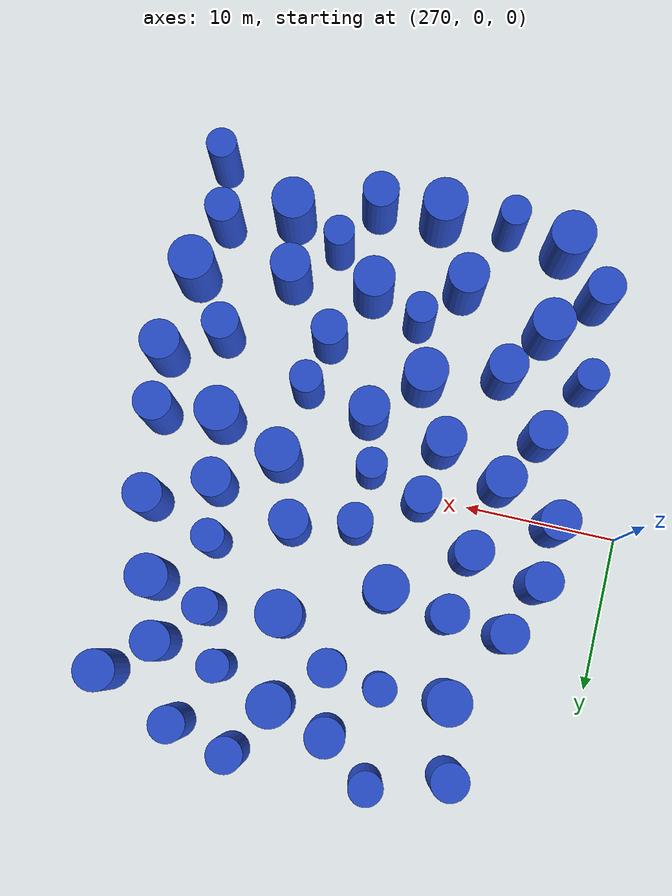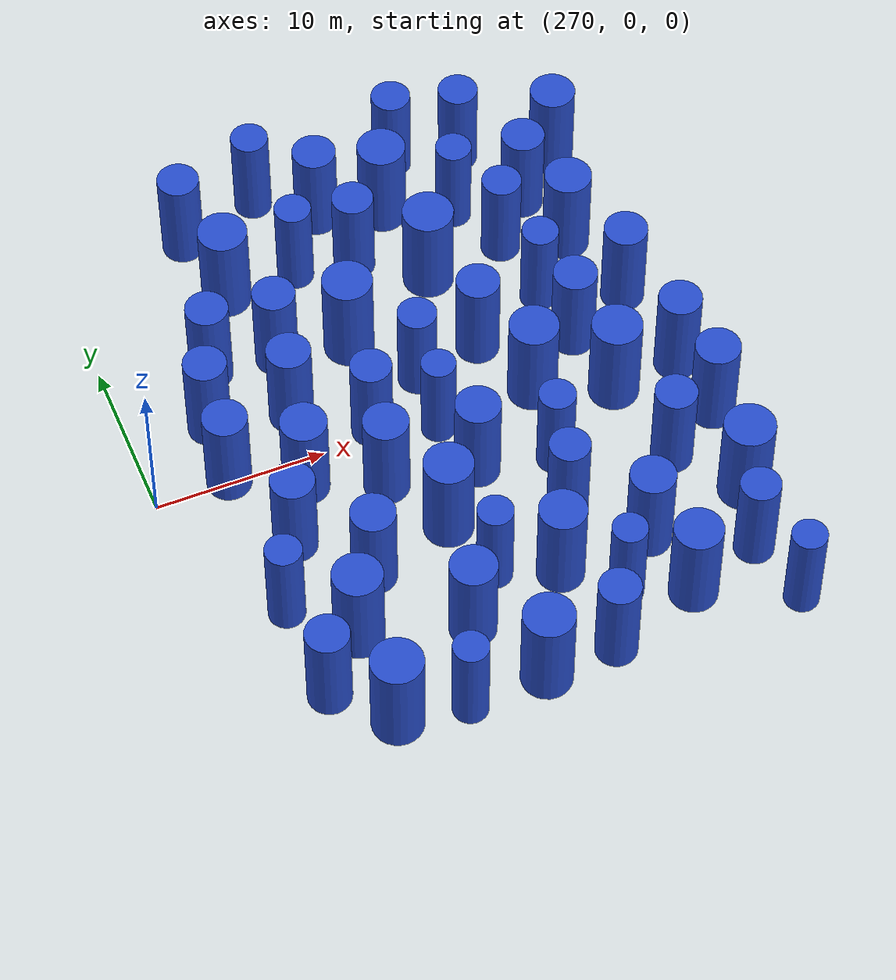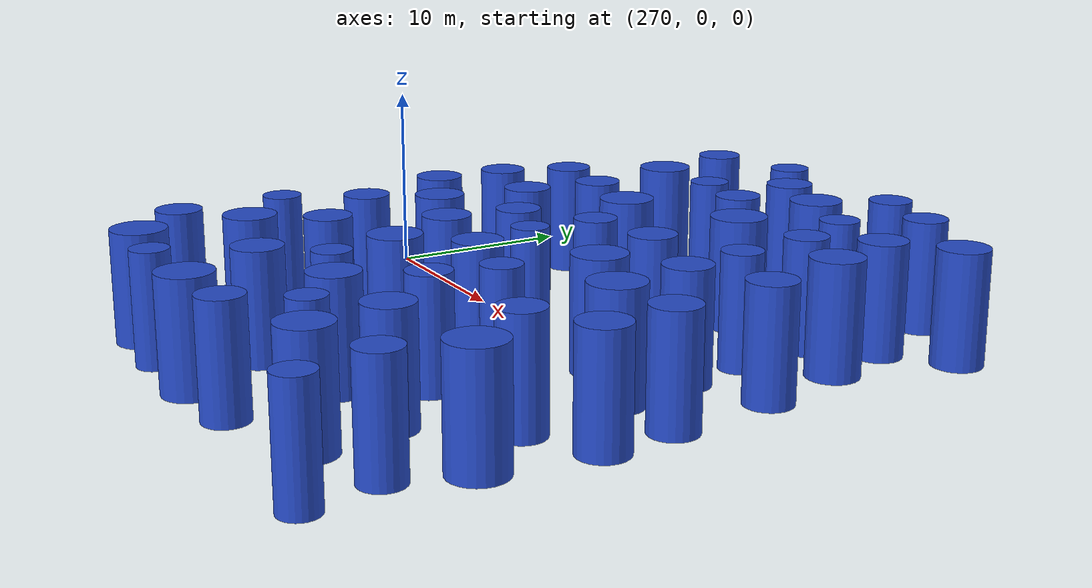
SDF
<sdf version="1.7">
 <world name="default">
  <model name="2">
   <static>1</static>
   <link name="link">
    <inertial>
     <mass>2</mass>
     <inertia><ixx>6.83423</ixx><ixy>0</ixy><ixz>0</ixz><iyy>6.83423</iyy><iyz>0</iyz><izz>1.66847</izz></inertia>
    </inertial>
    <collision name="collision">
     <geometry><cylinder><length>6</length><radius>1.29169</radius></cylinder></geometry>
     <surface><contact><collide_without_contact>1</collide_without_contact></contact></surface>
    </collision>
    <visual name="visual">
     <geometry><cylinder><length>6</length><radius>1.29169</radius></cylinder></geometry>
     <material>
      <script><uri>file://media/materials/scripts/gazebo.material</uri><name>Gazebo/Blue</name></script>
     </material>
    </visual>
    <gravity>0</gravity>
   </link>
   <pose>274.38 0.175366 3 0 -0 0</pose>
  </model>
  <model name="15">
   <static>1</static>
   <link name="link">
    <inertial>
     <mass>2</mass>
     <inertia><ixx>6.80663</ixx><ixy>0</ixy><ixz>0</ixz><iyy>6.80663</iyy><iyz>0</iyz><izz>1.61326</izz></inertia>
    </inertial>
    <collision name="collision">
     <geometry><cylinder><length>6</length><radius>1.27014</radius></cylinder></geometry>
     <surface><contact><collide_without_contact>1</collide_without_contact></contact></surface>
    </collision>
    <visual name="visual">
     <geometry><cylinder><length>6</length><radius>1.27014</radius></cylinder></geometry>
     <material>
      <script><uri>file://media/materials/scripts/gazebo.material</uri><name>Gazebo/Blue</name></script>
     </material>
    </visual>
    <gravity>0</gravity>
   </link>
   <pose>290.973 3.8653 3 0 -0 0</pose>
  </model>
  <model name="19">
   <static>1</static>
   <link name="link">
    <inertial>
     <mass>2</mass>
     <inertia><ixx>7.03448</ixx><ixy>0</ixy><ixz>0</ixz><iyy>7.03448</iyy><iyz>0</iyz><izz>2.06895</izz></inertia>
    </inertial>
    <collision name="collision">
     <geometry><cylinder><length>6</length><radius>1.43839</radius></cylinder></geometry>
     <surface><contact><collide_without_contact>1</collide_without_contact></contact></surface>
    </collision>
    <visual name="visual">
     <geometry><cylinder><length>6</length><radius>1.43839</radius></cylinder></geometry>
     <material>
      <script><uri>file://media/materials/scripts/gazebo.material</uri><name>Gazebo/Blue</name></script>
     </material>
    </visual>
    <gravity>0</gravity>
   </link>
   <pose>278.796 12.7132 3 0 -0 0</pose>
  </model>
  <model name="21">
   <static>1</static>
   <link name="link">
    <inertial>
     <mass>2</mass>
     <inertia><ixx>6.64731</ixx><ixy>0</ixy><ixz>0</ixz><iyy>6.64731</iyy><iyz>0</iyz><izz>1.29463</izz></inertia>
    </inertial>
    <collision name="collision">
     <geometry><cylinder><length>6</length><radius>1.13782</radius></cylinder></geometry>
     <surface><contact><collide_without_contact>1</collide_without_contact></contact></surface>
    </collision>
    <visual name="visual">
     <geometry><cylinder><length>6</length><radius>1.13782</radius></cylinder></geometry>
     <material>
      <script><uri>file://media/materials/scripts/gazebo.material</uri><name>Gazebo/Blue</name></script>
     </material>
    </visual>
    <gravity>0</gravity>
   </link>
   <pose>286.906 3.00644 3 0 -0 0</pose>
  </model>
  <model name="22">
   <static>1</static>
   <link name="link">
    <inertial>
     <mass>2</mass>
     <inertia><ixx>6.88461</ixx><ixy>0</ixy><ixz>0</ixz><iyy>6.88461</iyy><iyz>0</iyz><izz>1.76923</izz></inertia>
    </inertial>
    <collision name="collision">
     <geometry><cylinder><length>6</length><radius>1.33012</radius></cylinder></geometry>
     <surface><contact><collide_without_contact>1</collide_without_contact></contact></surface>
    </collision>
    <visual name="visual">
     <geometry><cylinder><length>6</length><radius>1.33012</radius></cylinder></geometry>
     <material>
      <script><uri>file://media/materials/scripts/gazebo.material</uri><name>Gazebo/Blue</name></script>
     </material>
    </visual>
    <gravity>0</gravity>
   </link>
   <pose>300.557 15.5685 3 0 -0 0</pose>
  </model>
  <model name="35">
   <static>1</static>
   <link name="link">
    <inertial>
     <mass>2</mass>
     <inertia><ixx>7.00701</ixx><ixy>0</ixy><ixz>0</ixz><iyy>7.00701</iyy><iyz>0</iyz><izz>2.01402</izz></inertia>
    </inertial>
    <collision name="collision">
     <geometry><cylinder><length>6</length><radius>1.41916</radius></cylinder></geometry>
     <surface><contact><collide_without_contact>1</collide_without_contact></contact></surface>
    </collision>
    <visual name="visual">
     <geometry><cylinder><length>6</length><radius>1.41916</radius></cylinder></geometry>
     <material>
      <script><uri>file://media/materials/scripts/gazebo.material</uri><name>Gazebo/Blue</name></script>
     </material>
    </visual>
    <gravity>0</gravity>
   </link>
   <pose>277.357 -12.2847 3 0 -0 0</pose>
  </model>
  <model name="60">
   <static>1</static>
   <link name="link">
    <inertial>
     <mass>2</mass>
     <inertia><ixx>6.81815</ixx><ixy>0</ixy><ixz>0</ixz><iyy>6.81815</iyy><iyz>0</iyz><izz>1.6363</izz></inertia>
    </inertial>
    <collision name="collision">
     <geometry><cylinder><length>6</length><radius>1.27918</radius></cylinder></geometry>
     <surface><contact><collide_without_contact>1</collide_without_contact></contact></surface>
    </collision>
    <visual name="visual">
     <geometry><cylinder><length>6</length><radius>1.27918</radius></cylinder></geometry>
     <material>
      <script><uri>file://media/materials/scripts/gazebo.material</uri><name>Gazebo/Blue</name></script>
     </material>
    </visual>
    <gravity>0</gravity>
   </link>
   <pose>285.808 16.4159 3 0 -0 0</pose>
  </model>
  <model name="90">
   <static>1</static>
   <link name="link">
    <inertial>
     <mass>2</mass>
     <inertia><ixx>6.95071</ixx><ixy>0</ixy><ixz>0</ixz><iyy>6.95071</iyy><iyz>0</iyz><izz>1.90143</izz></inertia>
    </inertial>
    <collision name="collision">
     <geometry><cylinder><length>6</length><radius>1.37892</radius></cylinder></geometry>
     <surface><contact><collide_without_contact>1</collide_without_contact></contact></surface>
    </collision>
    <visual name="visual">
     <geometry><cylinder><length>6</length><radius>1.37892</radius></cylinder></geometry>
     <material>
      <script><uri>file://media/materials/scripts/gazebo.material</uri><name>Gazebo/Blue</name></script>
     </material>
    </visual>
    <gravity>0</gravity>
   </link>
   <pose>298.807 9.19752 3 0 -0 0</pose>
  </model>
  <model name="95">
   <static>1</static>
   <link name="link">
    <inertial>
     <mass>2</mass>
     <inertia><ixx>7.02237</ixx><ixy>0</ixy><ixz>0</ixz><iyy>7.02237</iyy><iyz>0</iyz><izz>2.04473</izz></inertia>
    </inertial>
    <collision name="collision">
     <geometry><cylinder><length>6</length><radius>1.42994</radius></cylinder></geometry>
     <surface><contact><collide_without_contact>1</collide_without_contact></contact></surface>
    </collision>
    <visual name="visual">
     <geometry><cylinder><length>6</length><radius>1.42994</radius></cylinder></geometry>
     <material>
      <script><uri>file://media/materials/scripts/gazebo.material</uri><name>Gazebo/Blue</name></script>
     </material>
    </visual>
    <gravity>0</gravity>
   </link>
   <pose>284.617 -7.32385 3 0 -0 0</pose>
  </model>
  <model name="110">
   <static>1</static>
   <link name="link">
    <inertial>
     <mass>2</mass>
     <inertia><ixx>6.7483</ixx><ixy>0</ixy><ixz>0</ixz><iyy>6.7483</iyy><iyz>0</iyz><izz>1.49661</izz></inertia>
    </inertial>
    <collision name="collision">
     <geometry><cylinder><length>6</length><radius>1.22336</radius></cylinder></geometry>
     <surface><contact><collide_without_contact>1</collide_without_contact></contact></surface>
    </collision>
    <visual name="visual">
     <geometry><cylinder><length>6</length><radius>1.22336</radius></cylinder></geometry>
     <material>
      <script><uri>file://media/materials/scripts/gazebo.material</uri><name>Gazebo/Blue</name></script>
     </material>
    </visual>
    <gravity>0</gravity>
   </link>
   <pose>277.759 17.3587 3 0 -0 0</pose>
  </model>
  <model name="114">
   <static>1</static>
   <link name="link">
    <inertial>
     <mass>2</mass>
     <inertia><ixx>6.89362</ixx><ixy>0</ixy><ixz>0</ixz><iyy>6.89362</iyy><iyz>0</iyz><izz>1.78725</izz></inertia>
    </inertial>
    <collision name="collision">
     <geometry><cylinder><length>6</length><radius>1.33688</radius></cylinder></geometry>
     <surface><contact><collide_without_contact>1</collide_without_contact></contact></surface>
    </collision>
    <visual name="visual">
     <geometry><cylinder><length>6</length><radius>1.33688</radius></cylinder></geometry>
     <material>
      <script><uri>file://media/materials/scripts/gazebo.material</uri><name>Gazebo/Blue</name></script>
     </material>
    </visual>
    <gravity>0</gravity>
   </link>
   <pose>283.307 -14.065 3 0 -0 0</pose>
  </model>
  <model name="116">
   <static>1</static>
   <link name="link">
    <inertial>
     <mass>2</mass>
     <inertia><ixx>6.5672</ixx><ixy>0</ixy><ixz>0</ixz><iyy>6.5672</iyy><iyz>0</iyz><izz>1.13439</izz></inertia>
    </inertial>
    <collision name="collision">
     <geometry><cylinder><length>6</length><radius>1.06508</radius></cylinder></geometry>
     <surface><contact><collide_without_contact>1</collide_without_contact></contact></surface>
    </collision>
    <visual name="visual">
     <geometry><cylinder><length>6</length><radius>1.06508</radius></cylinder></geometry>
     <material>
      <script><uri>file://media/materials/scripts/gazebo.material</uri><name>Gazebo/Blue</name></script>
     </material>
    </visual>
    <gravity>0</gravity>
   </link>
   <pose>291.962 -5.21695 3 0 -0 0</pose>
  </model>
  <model name="117">
   <static>1</static>
   <link name="link">
    <inertial>
     <mass>2</mass>
     <inertia><ixx>6.65702</ixx><ixy>0</ixy><ixz>0</ixz><iyy>6.65702</iyy><iyz>0</iyz><izz>1.31404</izz></inertia>
    </inertial>
    <collision name="collision">
     <geometry><cylinder><length>6</length><radius>1.14632</radius></cylinder></geometry>
     <surface><contact><collide_without_contact>1</collide_without_contact></contact></surface>
    </collision>
    <visual name="visual">
     <geometry><cylinder><length>6</length><radius>1.14632</radius></cylinder></geometry>
     <material>
      <script><uri>file://media/materials/scripts/gazebo.material</uri><name>Gazebo/Blue</name></script>
     </material>
    </visual>
    <gravity>0</gravity>
   </link>
   <pose>299.755 -14.9856 3 0 -0 0</pose>
  </model>
  <model name="148">
   <static>1</static>
   <link name="link">
    <inertial>
     <mass>2</mass>
     <inertia><ixx>6.89814</ixx><ixy>0</ixy><ixz>0</ixz><iyy>6.89814</iyy><iyz>0</iyz><izz>1.79628</izz></inertia>
    </inertial>
    <collision name="collision">
     <geometry><cylinder><length>6</length><radius>1.34025</radius></cylinder></geometry>
     <surface><contact><collide_without_contact>1</collide_without_contact></contact></surface>
    </collision>
    <visual name="visual">
     <geometry><cylinder><length>6</length><radius>1.34025</radius></cylinder></geometry>
     <material>
      <script><uri>file://media/materials/scripts/gazebo.material</uri><name>Gazebo/Blue</name></script>
     </material>
    </visual>
    <gravity>0</gravity>
   </link>
   <pose>278.288 -1.72774 3 0 -0 0</pose>
  </model>
  <model name="185">
   <static>1</static>
   <link name="link">
    <inertial>
     <mass>2</mass>
     <inertia><ixx>6.66745</ixx><ixy>0</ixy><ixz>0</ixz><iyy>6.66745</iyy><iyz>0</iyz><izz>1.33491</izz></inertia>
    </inertial>
    <collision name="collision">
     <geometry><cylinder><length>6</length><radius>1.15538</radius></cylinder></geometry>
     <surface><contact><collide_without_contact>1</collide_without_contact></contact></surface>
    </collision>
    <visual name="visual">
     <geometry><cylinder><length>6</length><radius>1.15538</radius></cylinder></geometry>
     <material>
      <script><uri>file://media/materials/scripts/gazebo.material</uri><name>Gazebo/Blue</name></script>
     </material>
    </visual>
    <gravity>0</gravity>
   </link>
   <pose>295.095 10.2859 3 0 -0 0</pose>
  </model>
  <model name="189">
   <static>1</static>
   <link name="link">
    <inertial>
     <mass>2</mass>
     <inertia><ixx>6.68461</ixx><ixy>0</ixy><ixz>0</ixz><iyy>6.68461</iyy><iyz>0</iyz><izz>1.36923</izz></inertia>
    </inertial>
    <collision name="collision">
     <geometry><cylinder><length>6</length><radius>1.17014</radius></cylinder></geometry>
     <surface><contact><collide_without_contact>1</collide_without_contact></contact></surface>
    </collision>
    <visual name="visual">
     <geometry><cylinder><length>6</length><radius>1.17014</radius></cylinder></geometry>
     <material>
      <script><uri>file://media/materials/scripts/gazebo.material</uri><name>Gazebo/Blue</name></script>
     </material>
    </visual>
    <gravity>0</gravity>
   </link>
   <pose>295.417 17.7704 3 0 -0 0</pose>
  </model>
  <model name="190">
   <static>1</static>
   <link name="link">
    <inertial>
     <mass>2</mass>
     <inertia><ixx>6.82307</ixx><ixy>0</ixy><ixz>0</ixz><iyy>6.82307</iyy><iyz>0</iyz><izz>1.64614</izz></inertia>
    </inertial>
    <collision name="collision">
     <geometry><cylinder><length>6</length><radius>1.28302</radius></cylinder></geometry>
     <surface><contact><collide_without_contact>1</collide_without_contact></contact></surface>
    </collision>
    <visual name="visual">
     <geometry><cylinder><length>6</length><radius>1.28302</radius></cylinder></geometry>
     <material>
      <script><uri>file://media/materials/scripts/gazebo.material</uri><name>Gazebo/Blue</name></script>
     </material>
    </visual>
    <gravity>0</gravity>
   </link>
   <pose>279.268 3.22478 3 0 -0 0</pose>
  </model>
  <model name="194">
   <static>1</static>
   <link name="link">
    <inertial>
     <mass>2</mass>
     <inertia><ixx>6.50051</ixx><ixy>0</ixy><ixz>0</ixz><iyy>6.50051</iyy><iyz>0</iyz><izz>1.00101</izz></inertia>
    </inertial>
    <collision name="collision">
     <geometry><cylinder><length>6</length><radius>1.00051</radius></cylinder></geometry>
     <surface><contact><collide_without_contact>1</collide_without_contact></contact></surface>
    </collision>
    <visual name="visual">
     <geometry><cylinder><length>6</length><radius>1.00051</radius></cylinder></geometry>
     <material>
      <script><uri>file://media/materials/scripts/gazebo.material</uri><name>Gazebo/Blue</name></script>
     </material>
    </visual>
    <gravity>0</gravity>
   </link>
   <pose>286.685 -0.744304 3 0 -0 0</pose>
  </model>
  <model name="200">
   <static>1</static>
   <link name="link">
    <inertial>
     <mass>2</mass>
     <inertia><ixx>7.06851</ixx><ixy>0</ixy><ixz>0</ixz><iyy>7.06851</iyy><iyz>0</iyz><izz>2.13701</izz></inertia>
    </inertial>
    <collision name="collision">
     <geometry><cylinder><length>6</length><radius>1.46185</radius></cylinder></geometry>
     <surface><contact><collide_without_contact>1</collide_without_contact></contact></surface>
    </collision>
    <visual name="visual">
     <geometry><cylinder><length>6</length><radius>1.46185</radius></cylinder></geometry>
     <material>
      <script><uri>file://media/materials/scripts/gazebo.material</uri><name>Gazebo/Blue</name></script>
     </material>
    </visual>
    <gravity>0</gravity>
   </link>
   <pose>284.117 6.6833 3 0 -0 0</pose>
  </model>
  <model name="203">
   <static>1</static>
   <link name="link">
    <inertial>
     <mass>2</mass>
     <inertia><ixx>6.91462</ixx><ixy>0</ixy><ixz>0</ixz><iyy>6.91462</iyy><iyz>0</iyz><izz>1.82925</izz></inertia>
    </inertial>
    <collision name="collision">
     <geometry><cylinder><length>6</length><radius>1.3525</radius></cylinder></geometry>
     <surface><contact><collide_without_contact>1</collide_without_contact></contact></surface>
    </collision>
    <visual name="visual">
     <geometry><cylinder><length>6</length><radius>1.3525</radius></cylinder></geometry>
     <material>
      <script><uri>file://media/materials/scripts/gazebo.material</uri><name>Gazebo/Blue</name></script>
     </material>
    </visual>
    <gravity>0</gravity>
   </link>
   <pose>289.162 -12.513 3 0 -0 0</pose>
  </model>
  <model name="210">
   <static>1</static>
   <link name="link">
    <inertial>
     <mass>2</mass>
     <inertia><ixx>6.60588</ixx><ixy>0</ixy><ixz>0</ixz><iyy>6.60588</iyy><iyz>0</iyz><izz>1.21177</izz></inertia>
    </inertial>
    <collision name="collision">
     <geometry><cylinder><length>6</length><radius>1.1008</radius></cylinder></geometry>
     <surface><contact><collide_without_contact>1</collide_without_contact></contact></surface>
    </collision>
    <visual name="visual">
     <geometry><cylinder><length>6</length><radius>1.1008</radius></cylinder></geometry>
     <material>
      <script><uri>file://media/materials/scripts/gazebo.material</uri><name>Gazebo/Blue</name></script>
     </material>
    </visual>
    <gravity>0</gravity>
   </link>
   <pose>282.696 18.8441 3 0 -0 0</pose>
  </model>
  <model name="223">
   <static>1</static>
   <link name="link">
    <inertial>
     <mass>2</mass>
     <inertia><ixx>6.50676</ixx><ixy>0</ixy><ixz>0</ixz><iyy>6.50676</iyy><iyz>0</iyz><izz>1.01351</izz></inertia>
    </inertial>
    <collision name="collision">
     <geometry><cylinder><length>6</length><radius>1.00673</radius></cylinder></geometry>
     <surface><contact><collide_without_contact>1</collide_without_contact></contact></surface>
    </collision>
    <visual name="visual">
     <geometry><cylinder><length>6</length><radius>1.00673</radius></cylinder></geometry>
     <material>
      <script><uri>file://media/materials/scripts/gazebo.material</uri><name>Gazebo/Blue</name></script>
     </material>
    </visual>
    <gravity>0</gravity>
   </link>
   <pose>281.224 -18.7791 3 0 -0 0</pose>
  </model>
  <model name="266">
   <static>1</static>
   <link name="link">
    <inertial>
     <mass>2</mass>
     <inertia><ixx>7.03242</ixx><ixy>0</ixy><ixz>0</ixz><iyy>7.03242</iyy><iyz>0</iyz><izz>2.06484</izz></inertia>
    </inertial>
    <collision name="collision">
     <geometry><cylinder><length>6</length><radius>1.43695</radius></cylinder></geometry>
     <surface><contact><collide_without_contact>1</collide_without_contact></contact></surface>
    </collision>
    <visual name="visual">
     <geometry><cylinder><length>6</length><radius>1.43695</radius></cylinder></geometry>
     <material>
      <script><uri>file://media/materials/scripts/gazebo.material</uri><name>Gazebo/Blue</name></script>
     </material>
    </visual>
    <gravity>0</gravity>
   </link>
   <pose>292.659 -0.269649 3 0 -0 0</pose>
  </model>
  <model name="270">
   <static>1</static>
   <link name="link">
    <inertial>
     <mass>2</mass>
     <inertia><ixx>7.11979</ixx><ixy>0</ixy><ixz>0</ixz><iyy>7.11979</iyy><iyz>0</iyz><izz>2.23959</izz></inertia>
    </inertial>
    <collision name="collision">
     <geometry><cylinder><length>6</length><radius>1.49652</radius></cylinder></geometry>
     <surface><contact><collide_without_contact>1</collide_without_contact></contact></surface>
    </collision>
    <visual name="visual">
     <geometry><cylinder><length>6</length><radius>1.49652</radius></cylinder></geometry>
     <material>
      <script><uri>file://media/materials/scripts/gazebo.material</uri><name>Gazebo/Blue</name></script>
     </material>
    </visual>
    <gravity>0</gravity>
   </link>
   <pose>290.258 9.68242 3 0 -0 0</pose>
  </model>
  <model name="273">
   <static>1</static>
   <link name="link">
    <inertial>
     <mass>2</mass>
     <inertia><ixx>6.80767</ixx><ixy>0</ixy><ixz>0</ixz><iyy>6.80767</iyy><iyz>0</iyz><izz>1.61534</izz></inertia>
    </inertial>
    <collision name="collision">
     <geometry><cylinder><length>6</length><radius>1.27096</radius></cylinder></geometry>
     <surface><contact><collide_without_contact>1</collide_without_contact></contact></surface>
    </collision>
    <visual name="visual">
     <geometry><cylinder><length>6</length><radius>1.27096</radius></cylinder></geometry>
     <material>
      <script><uri>file://media/materials/scripts/gazebo.material</uri><name>Gazebo/Blue</name></script>
     </material>
    </visual>
    <gravity>0</gravity>
   </link>
   <pose>300.287 4.24983 3 0 -0 0</pose>
  </model>
  <model name="279">
   <static>1</static>
   <link name="link">
    <inertial>
     <mass>2</mass>
     <inertia><ixx>6.71025</ixx><ixy>0</ixy><ixz>0</ixz><iyy>6.71025</iyy><iyz>0</iyz><izz>1.42051</izz></inertia>
    </inertial>
    <collision name="collision">
     <geometry><cylinder><length>6</length><radius>1.19185</radius></cylinder></geometry>
     <surface><contact><collide_without_contact>1</collide_without_contact></contact></surface>
    </collision>
    <visual name="visual">
     <geometry><cylinder><length>6</length><radius>1.19185</radius></cylinder></geometry>
     <material>
      <script><uri>file://media/materials/scripts/gazebo.material</uri><name>Gazebo/Blue</name></script>
     </material>
    </visual>
    <gravity>0</gravity>
   </link>
   <pose>289.992 -18.2366 3 0 -0 0</pose>
  </model>
  <model name="281">
   <static>1</static>
   <link name="link">
    <inertial>
     <mass>2</mass>
     <inertia><ixx>6.73046</ixx><ixy>0</ixy><ixz>0</ixz><iyy>6.73046</iyy><iyz>0</iyz><izz>1.46092</izz></inertia>
    </inertial>
    <collision name="collision">
     <geometry><cylinder><length>6</length><radius>1.20869</radius></cylinder></geometry>
     <surface><contact><collide_without_contact>1</collide_without_contact></contact></surface>
    </collision>
    <visual name="visual">
     <geometry><cylinder><length>6</length><radius>1.20869</radius></cylinder></geometry>
     <material>
      <script><uri>file://media/materials/scripts/gazebo.material</uri><name>Gazebo/Blue</name></script>
     </material>
    </visual>
    <gravity>0</gravity>
   </link>
   <pose>298.109 -7.53957 3 0 -0 0</pose>
  </model>
  <model name="292">
   <static>1</static>
   <link name="link">
    <inertial>
     <mass>2</mass>
     <inertia><ixx>6.57147</ixx><ixy>0</ixy><ixz>0</ixz><iyy>6.57147</iyy><iyz>0</iyz><izz>1.14295</izz></inertia>
    </inertial>
    <collision name="collision">
     <geometry><cylinder><length>6</length><radius>1.06909</radius></cylinder></geometry>
     <surface><contact><collide_without_contact>1</collide_without_contact></contact></surface>
    </collision>
    <visual name="visual">
     <geometry><cylinder><length>6</length><radius>1.06909</radius></cylinder></geometry>
     <material>
      <script><uri>file://media/materials/scripts/gazebo.material</uri><name>Gazebo/Blue</name></script>
     </material>
    </visual>
    <gravity>0</gravity>
   </link>
   <pose>295.676 5.94514 3 0 -0 0</pose>
  </model>
  <model name="303">
   <static>1</static>
   <link name="link">
    <inertial>
     <mass>2</mass>
     <inertia><ixx>7.06158</ixx><ixy>0</ixy><ixz>0</ixz><iyy>7.06158</iyy><iyz>0</iyz><izz>2.12315</izz></inertia>
    </inertial>
    <collision name="collision">
     <geometry><cylinder><length>6</length><radius>1.4571</radius></cylinder></geometry>
     <surface><contact><collide_without_contact>1</collide_without_contact></contact></surface>
    </collision>
    <visual name="visual">
     <geometry><cylinder><length>6</length><radius>1.4571</radius></cylinder></geometry>
     <material>
      <script><uri>file://media/materials/scripts/gazebo.material</uri><name>Gazebo/Blue</name></script>
     </material>
    </visual>
    <gravity>0</gravity>
   </link>
   <pose>285.79 -18.4946 3 0 -0 0</pose>
  </model>
  <model name="307">
   <static>1</static>
   <link name="link">
    <inertial>
     <mass>2</mass>
     <inertia><ixx>6.77109</ixx><ixy>0</ixy><ixz>0</ixz><iyy>6.77109</iyy><iyz>0</iyz><izz>1.54219</izz></inertia>
    </inertial>
    <collision name="collision">
     <geometry><cylinder><length>6</length><radius>1.24185</radius></cylinder></geometry>
     <surface><contact><collide_without_contact>1</collide_without_contact></contact></surface>
    </collision>
    <visual name="visual">
     <geometry><cylinder><length>6</length><radius>1.24185</radius></cylinder></geometry>
     <material>
      <script><uri>file://media/materials/scripts/gazebo.material</uri><name>Gazebo/Blue</name></script>
     </material>
    </visual>
    <gravity>0</gravity>
   </link>
   <pose>276.067 7.773 3 0 -0 0</pose>
  </model>
  <model name="308">
   <static>1</static>
   <link name="link">
    <inertial>
     <mass>2</mass>
     <inertia><ixx>6.84486</ixx><ixy>0</ixy><ixz>0</ixz><iyy>6.84486</iyy><iyz>0</iyz><izz>1.68971</izz></inertia>
    </inertial>
    <collision name="collision">
     <geometry><cylinder><length>6</length><radius>1.29989</radius></cylinder></geometry>
     <surface><contact><collide_without_contact>1</collide_without_contact></contact></surface>
    </collision>
    <visual name="visual">
     <geometry><cylinder><length>6</length><radius>1.29989</radius></cylinder></geometry>
     <material>
      <script><uri>file://media/materials/scripts/gazebo.material</uri><name>Gazebo/Blue</name></script>
     </material>
    </visual>
    <gravity>0</gravity>
   </link>
   <pose>294.61 -12.2147 3 0 -0 0</pose>
  </model>
  <model name="319">
   <static>1</static>
   <link name="link">
    <inertial>
     <mass>2</mass>
     <inertia><ixx>6.77188</ixx><ixy>0</ixy><ixz>0</ixz><iyy>6.77188</iyy><iyz>0</iyz><izz>1.54376</izz></inertia>
    </inertial>
    <collision name="collision">
     <geometry><cylinder><length>6</length><radius>1.24248</radius></cylinder></geometry>
     <surface><contact><collide_without_contact>1</collide_without_contact></contact></surface>
    </collision>
    <visual name="visual">
     <geometry><cylinder><length>6</length><radius>1.24248</radius></cylinder></geometry>
     <material>
      <script><uri>file://media/materials/scripts/gazebo.material</uri><name>Gazebo/Blue</name></script>
     </material>
    </visual>
    <gravity>0</gravity>
   </link>
   <pose>274.528 -15.1859 3 0 -0 0</pose>
  </model>
  <model name="330">
   <static>1</static>
   <link name="link">
    <inertial>
     <mass>2</mass>
     <inertia><ixx>6.57207</ixx><ixy>0</ixy><ixz>0</ixz><iyy>6.57207</iyy><iyz>0</iyz><izz>1.14415</izz></inertia>
    </inertial>
    <collision name="collision">
     <geometry><cylinder><length>6</length><radius>1.06965</radius></cylinder></geometry>
     <surface><contact><collide_without_contact>1</collide_without_contact></contact></surface>
    </collision>
    <visual name="visual">
     <geometry><cylinder><length>6</length><radius>1.06965</radius></cylinder></geometry>
     <material>
      <script><uri>file://media/materials/scripts/gazebo.material</uri><name>Gazebo/Blue</name></script>
     </material>
    </visual>
    <gravity>0</gravity>
   </link>
   <pose>283.138 12.836 3 0 -0 0</pose>
  </model>
  <model name="333">
   <static>1</static>
   <link name="link">
    <inertial>
     <mass>2</mass>
     <inertia><ixx>6.9661</ixx><ixy>0</ixy><ixz>0</ixz><iyy>6.9661</iyy><iyz>0</iyz><izz>1.93219</izz></inertia>
    </inertial>
    <collision name="collision">
     <geometry><cylinder><length>6</length><radius>1.39003</radius></cylinder></geometry>
     <surface><contact><collide_without_contact>1</collide_without_contact></contact></surface>
    </collision>
    <visual name="visual">
     <geometry><cylinder><length>6</length><radius>1.39003</radius></cylinder></geometry>
     <material>
      <script><uri>file://media/materials/scripts/gazebo.material</uri><name>Gazebo/Blue</name></script>
     </material>
    </visual>
    <gravity>0</gravity>
   </link>
   <pose>295.407 -16.4284 3 0 -0 0</pose>
  </model>
  <model name="351">
   <static>1</static>
   <link name="link">
    <inertial>
     <mass>2</mass>
     <inertia><ixx>6.71539</ixx><ixy>0</ixy><ixz>0</ixz><iyy>6.71539</iyy><iyz>0</iyz><izz>1.43078</izz></inertia>
    </inertial>
    <collision name="collision">
     <geometry><cylinder><length>6</length><radius>1.19615</radius></cylinder></geometry>
     <surface><contact><collide_without_contact>1</collide_without_contact></contact></surface>
    </collision>
    <visual name="visual">
     <geometry><cylinder><length>6</length><radius>1.19615</radius></cylinder></geometry>
     <material>
      <script><uri>file://media/materials/scripts/gazebo.material</uri><name>Gazebo/Blue</name></script>
     </material>
    </visual>
    <gravity>0</gravity>
   </link>
   <pose>283.14 0.516759 3 0 -0 0</pose>
  </model>
  <model name="357">
   <static>1</static>
   <link name="link">
    <inertial>
     <mass>2</mass>
     <inertia><ixx>6.79388</ixx><ixy>0</ixy><ixz>0</ixz><iyy>6.79388</iyy><iyz>0</iyz><izz>1.58775</izz></inertia>
    </inertial>
    <collision name="collision">
     <geometry><cylinder><length>6</length><radius>1.26006</radius></cylinder></geometry>
     <surface><contact><collide_without_contact>1</collide_without_contact></contact></surface>
    </collision>
    <visual name="visual">
     <geometry><cylinder><length>6</length><radius>1.26006</radius></cylinder></geometry>
     <material>
      <script><uri>file://media/materials/scripts/gazebo.material</uri><name>Gazebo/Blue</name></script>
     </material>
    </visual>
    <gravity>0</gravity>
   </link>
   <pose>301.076 -1.54943 3 0 -0 0</pose>
  </model>
  <model name="382">
   <static>1</static>
   <link name="link">
    <inertial>
     <mass>2</mass>
     <inertia><ixx>6.8236</ixx><ixy>0</ixy><ixz>0</ixz><iyy>6.8236</iyy><iyz>0</iyz><izz>1.64719</izz></inertia>
    </inertial>
    <collision name="collision">
     <geometry><cylinder><length>6</length><radius>1.28343</radius></cylinder></geometry>
     <surface><contact><collide_without_contact>1</collide_without_contact></contact></surface>
    </collision>
    <visual name="visual">
     <geometry><cylinder><length>6</length><radius>1.28343</radius></cylinder></geometry>
     <material>
      <script><uri>file://media/materials/scripts/gazebo.material</uri><name>Gazebo/Blue</name></script>
     </material>
    </visual>
    <gravity>0</gravity>
   </link>
   <pose>279.602 -8.83757 3 0 -0 0</pose>
  </model>
  <model name="426">
   <static>1</static>
   <link name="link">
    <inertial>
     <mass>2</mass>
     <inertia><ixx>7.00392</ixx><ixy>0</ixy><ixz>0</ixz><iyy>7.00392</iyy><iyz>0</iyz><izz>2.00784</izz></inertia>
    </inertial>
    <collision name="collision">
     <geometry><cylinder><length>6</length><radius>1.41698</radius></cylinder></geometry>
     <surface><contact><collide_without_contact>1</collide_without_contact></contact></surface>
    </collision>
    <visual name="visual">
     <geometry><cylinder><length>6</length><radius>1.41698</radius></cylinder></geometry>
     <material>
      <script><uri>file://media/materials/scripts/gazebo.material</uri><name>Gazebo/Blue</name></script>
     </material>
    </visual>
    <gravity>0</gravity>
   </link>
   <pose>289.57 15.2904 3 0 -0 0</pose>
  </model>
  <model name="429">
   <static>1</static>
   <link name="link">
    <inertial>
     <mass>2</mass>
     <inertia><ixx>7.07267</ixx><ixy>0</ixy><ixz>0</ixz><iyy>7.07267</iyy><iyz>0</iyz><izz>2.14535</izz></inertia>
    </inertial>
    <collision name="collision">
     <geometry><cylinder><length>6</length><radius>1.4647</radius></cylinder></geometry>
     <surface><contact><collide_without_contact>1</collide_without_contact></contact></surface>
    </collision>
    <visual name="visual">
     <geometry><cylinder><length>6</length><radius>1.4647</radius></cylinder></geometry>
     <material>
      <script><uri>file://media/materials/scripts/gazebo.material</uri><name>Gazebo/Blue</name></script>
     </material>
    </visual>
    <gravity>0</gravity>
   </link>
   <pose>296.988 -1.98764 3 0 -0 0</pose>
  </model>
  <model name="433">
   <static>1</static>
   <link name="link">
    <inertial>
     <mass>2</mass>
     <inertia><ixx>6.6875</ixx><ixy>0</ixy><ixz>0</ixz><iyy>6.6875</iyy><iyz>0</iyz><izz>1.375</izz></inertia>
    </inertial>
    <collision name="collision">
     <geometry><cylinder><length>6</length><radius>1.1726</radius></cylinder></geometry>
     <surface><contact><collide_without_contact>1</collide_without_contact></contact></surface>
    </collision>
    <visual name="visual">
     <geometry><cylinder><length>6</length><radius>1.1726</radius></cylinder></geometry>
     <material>
      <script><uri>file://media/materials/scripts/gazebo.material</uri><name>Gazebo/Blue</name></script>
     </material>
    </visual>
    <gravity>0</gravity>
   </link>
   <pose>291.236 -8.64569 3 0 -0 0</pose>
  </model>
  <model name="451">
   <static>1</static>
   <link name="link">
    <inertial>
     <mass>2</mass>
     <inertia><ixx>6.77808</ixx><ixy>0</ixy><ixz>0</ixz><iyy>6.77808</iyy><iyz>0</iyz><izz>1.55616</izz></inertia>
    </inertial>
    <collision name="collision">
     <geometry><cylinder><length>6</length><radius>1.24746</radius></cylinder></geometry>
     <surface><contact><collide_without_contact>1</collide_without_contact></contact></surface>
    </collision>
    <visual name="visual">
     <geometry><cylinder><length>6</length><radius>1.24746</radius></cylinder></geometry>
     <material>
      <script><uri>file://media/materials/scripts/gazebo.material</uri><name>Gazebo/Blue</name></script>
     </material>
    </visual>
    <gravity>0</gravity>
   </link>
   <pose>279.937 7.38396 3 0 -0 0</pose>
  </model>
  <model name="453">
   <static>1</static>
   <link name="link">
    <inertial>
     <mass>2</mass>
     <inertia><ixx>6.85596</ixx><ixy>0</ixy><ixz>0</ixz><iyy>6.85596</iyy><iyz>0</iyz><izz>1.71192</izz></inertia>
    </inertial>
    <collision name="collision">
     <geometry><cylinder><length>6</length><radius>1.30841</radius></cylinder></geometry>
     <surface><contact><collide_without_contact>1</collide_without_contact></contact></surface>
    </collision>
    <visual name="visual">
     <geometry><cylinder><length>6</length><radius>1.30841</radius></cylinder></geometry>
     <material>
      <script><uri>file://media/materials/scripts/gazebo.material</uri><name>Gazebo/Blue</name></script>
     </material>
    </visual>
    <gravity>0</gravity>
   </link>
   <pose>287.624 -4.2393 3 0 -0 0</pose>
  </model>
  <model name="464">
   <static>1</static>
   <link name="link">
    <inertial>
     <mass>2</mass>
     <inertia><ixx>7.08929</ixx><ixy>0</ixy><ixz>0</ixz><iyy>7.08929</iyy><iyz>0</iyz><izz>2.17857</izz></inertia>
    </inertial>
    <collision name="collision">
     <geometry><cylinder><length>6</length><radius>1.476</radius></cylinder></geometry>
     <surface><contact><collide_without_contact>1</collide_without_contact></contact></surface>
    </collision>
    <visual name="visual">
     <geometry><cylinder><length>6</length><radius>1.476</radius></cylinder></geometry>
     <material>
      <script><uri>file://media/materials/scripts/gazebo.material</uri><name>Gazebo/Blue</name></script>
     </material>
    </visual>
    <gravity>0</gravity>
   </link>
   <pose>300.898 -11.154 3 0 -0 0</pose>
  </model>
  <model name="482">
   <static>1</static>
   <link name="link">
    <inertial>
     <mass>2</mass>
     <inertia><ixx>6.55124</ixx><ixy>0</ixy><ixz>0</ixz><iyy>6.55124</iyy><iyz>0</iyz><izz>1.10248</izz></inertia>
    </inertial>
    <collision name="collision">
     <geometry><cylinder><length>6</length><radius>1.04999</radius></cylinder></geometry>
     <surface><contact><collide_without_contact>1</collide_without_contact></contact></surface>
    </collision>
    <visual name="visual">
     <geometry><cylinder><length>6</length><radius>1.04999</radius></cylinder></geometry>
     <material>
      <script><uri>file://media/materials/scripts/gazebo.material</uri><name>Gazebo/Blue</name></script>
     </material>
    </visual>
    <gravity>0</gravity>
   </link>
   <pose>293.477 13.701 3 0 -0 0</pose>
  </model>
  <model name="503">
   <static>1</static>
   <link name="link">
    <inertial>
     <mass>2</mass>
     <inertia><ixx>6.54823</ixx><ixy>0</ixy><ixz>0</ixz><iyy>6.54823</iyy><iyz>0</iyz><izz>1.09647</izz></inertia>
    </inertial>
    <collision name="collision">
     <geometry><cylinder><length>6</length><radius>1.04712</radius></cylinder></geometry>
     <surface><contact><collide_without_contact>1</collide_without_contact></contact></surface>
    </collision>
    <visual name="visual">
     <geometry><cylinder><length>6</length><radius>1.04712</radius></cylinder></geometry>
     <material>
      <script><uri>file://media/materials/scripts/gazebo.material</uri><name>Gazebo/Blue</name></script>
     </material>
    </visual>
    <gravity>0</gravity>
   </link>
   <pose>274.271 -9.31282 3 0 -0 0</pose>
  </model>
  <model name="507">
   <static>1</static>
   <link name="link">
    <inertial>
     <mass>2</mass>
     <inertia><ixx>6.81428</ixx><ixy>0</ixy><ixz>0</ixz><iyy>6.81428</iyy><iyz>0</iyz><izz>1.62855</izz></inertia>
    </inertial>
    <collision name="collision">
     <geometry><cylinder><length>6</length><radius>1.27615</radius></cylinder></geometry>
     <surface><contact><collide_without_contact>1</collide_without_contact></contact></surface>
    </collision>
    <visual name="visual">
     <geometry><cylinder><length>6</length><radius>1.27615</radius></cylinder></geometry>
     <material>
      <script><uri>file://media/materials/scripts/gazebo.material</uri><name>Gazebo/Blue</name></script>
     </material>
    </visual>
    <gravity>0</gravity>
   </link>
   <pose>296.309 2.34227 3 0 -0 0</pose>
  </model>
  <model name="508">
   <static>1</static>
   <link name="link">
    <inertial>
     <mass>2</mass>
     <inertia><ixx>6.6738</ixx><ixy>0</ixy><ixz>0</ixz><iyy>6.6738</iyy><iyz>0</iyz><izz>1.3476</izz></inertia>
    </inertial>
    <collision name="collision">
     <geometry><cylinder><length>6</length><radius>1.16086</radius></cylinder></geometry>
     <surface><contact><collide_without_contact>1</collide_without_contact></contact></surface>
    </collision>
    <visual name="visual">
     <geometry><cylinder><length>6</length><radius>1.16086</radius></cylinder></geometry>
     <material>
      <script><uri>file://media/materials/scripts/gazebo.material</uri><name>Gazebo/Blue</name></script>
     </material>
    </visual>
    <gravity>0</gravity>
   </link>
   <pose>291.548 18.7856 3 0 -0 0</pose>
  </model>
  <model name="514">
   <static>1</static>
   <link name="link">
    <inertial>
     <mass>2</mass>
     <inertia><ixx>6.86141</ixx><ixy>0</ixy><ixz>0</ixz><iyy>6.86141</iyy><iyz>0</iyz><izz>1.72282</izz></inertia>
    </inertial>
    <collision name="collision">
     <geometry><cylinder><length>6</length><radius>1.31256</radius></cylinder></geometry>
     <surface><contact><collide_without_contact>1</collide_without_contact></contact></surface>
    </collision>
    <visual name="visual">
     <geometry><cylinder><length>6</length><radius>1.31256</radius></cylinder></geometry>
     <material>
      <script><uri>file://media/materials/scripts/gazebo.material</uri><name>Gazebo/Blue</name></script>
     </material>
    </visual>
    <gravity>0</gravity>
   </link>
   <pose>282.49 -3.39007 3 0 -0 0</pose>
  </model>
  <model name="517">
   <static>1</static>
   <link name="link">
    <inertial>
     <mass>2</mass>
     <inertia><ixx>6.74172</ixx><ixy>0</ixy><ixz>0</ixz><iyy>6.74172</iyy><iyz>0</iyz><izz>1.48344</izz></inertia>
    </inertial>
    <collision name="collision">
     <geometry><cylinder><length>6</length><radius>1.21796</radius></cylinder></geometry>
     <surface><contact><collide_without_contact>1</collide_without_contact></contact></surface>
    </collision>
    <visual name="visual">
     <geometry><cylinder><length>6</length><radius>1.21796</radius></cylinder></geometry>
     <material>
      <script><uri>file://media/materials/scripts/gazebo.material</uri><name>Gazebo/Blue</name></script>
     </material>
    </visual>
    <gravity>0</gravity>
   </link>
   <pose>286.609 12.2765 3 0 -0 0</pose>
  </model>
  <model name="519">
   <static>1</static>
   <link name="link">
    <inertial>
     <mass>2</mass>
     <inertia><ixx>6.85084</ixx><ixy>0</ixy><ixz>0</ixz><iyy>6.85084</iyy><iyz>0</iyz><izz>1.70168</izz></inertia>
    </inertial>
    <collision name="collision">
     <geometry><cylinder><length>6</length><radius>1.30449</radius></cylinder></geometry>
     <surface><contact><collide_without_contact>1</collide_without_contact></contact></surface>
    </collision>
    <visual name="visual">
     <geometry><cylinder><length>6</length><radius>1.30449</radius></cylinder></geometry>
     <material>
      <script><uri>file://media/materials/scripts/gazebo.material</uri><name>Gazebo/Blue</name></script>
     </material>
    </visual>
    <gravity>0</gravity>
   </link>
   <pose>301.586 -5.50253 3 0 -0 0</pose>
  </model>
  <model name="521">
   <static>1</static>
   <link name="link">
    <inertial>
     <mass>2</mass>
     <inertia><ixx>6.79447</ixx><ixy>0</ixy><ixz>0</ixz><iyy>6.79447</iyy><iyz>0</iyz><izz>1.58895</izz></inertia>
    </inertial>
    <collision name="collision">
     <geometry><cylinder><length>6</length><radius>1.26053</radius></cylinder></geometry>
     <surface><contact><collide_without_contact>1</collide_without_contact></contact></surface>
    </collision>
    <visual name="visual">
     <geometry><cylinder><length>6</length><radius>1.26053</radius></cylinder></geometry>
     <material>
      <script><uri>file://media/materials/scripts/gazebo.material</uri><name>Gazebo/Blue</name></script>
     </material>
    </visual>
    <gravity>0</gravity>
   </link>
   <pose>276.335 -5.21289 3 0 -0 0</pose>
  </model>
  <model name="528">
   <static>1</static>
   <link name="link">
    <inertial>
     <mass>2</mass>
     <inertia><ixx>6.52759</ixx><ixy>0</ixy><ixz>0</ixz><iyy>6.52759</iyy><iyz>0</iyz><izz>1.05517</izz></inertia>
    </inertial>
    <collision name="collision">
     <geometry><cylinder><length>6</length><radius>1.02722</radius></cylinder></geometry>
     <surface><contact><collide_without_contact>1</collide_without_contact></contact></surface>
    </collision>
    <visual name="visual">
     <geometry><cylinder><length>6</length><radius>1.02722</radius></cylinder></geometry>
     <material>
      <script><uri>file://media/materials/scripts/gazebo.material</uri><name>Gazebo/Blue</name></script>
     </material>
    </visual>
    <gravity>0</gravity>
   </link>
   <pose>285.77 -11.1992 3 0 -0 0</pose>
  </model>
  <model name="529">
   <static>1</static>
   <link name="link">
    <inertial>
     <mass>2</mass>
     <inertia><ixx>6.78134</ixx><ixy>0</ixy><ixz>0</ixz><iyy>6.78134</iyy><iyz>0</iyz><izz>1.56268</izz></inertia>
    </inertial>
    <collision name="collision">
     <geometry><cylinder><length>6</length><radius>1.25007</radius></cylinder></geometry>
     <surface><contact><collide_without_contact>1</collide_without_contact></contact></surface>
    </collision>
    <visual name="visual">
     <geometry><cylinder><length>6</length><radius>1.25007</radius></cylinder></geometry>
     <material>
      <script><uri>file://media/materials/scripts/gazebo.material</uri><name>Gazebo/Blue</name></script>
     </material>
    </visual>
    <gravity>0</gravity>
   </link>
   <pose>274.646 4.15029 3 0 -0 0</pose>
  </model>
  <model name="550">
   <static>1</static>
   <link name="link">
    <inertial>
     <mass>2</mass>
     <inertia><ixx>7.08377</ixx><ixy>0</ixy><ixz>0</ixz><iyy>7.08377</iyy><iyz>0</iyz><izz>2.16754</izz></inertia>
    </inertial>
    <collision name="collision">
     <geometry><cylinder><length>6</length><radius>1.47226</radius></cylinder></geometry>
     <surface><contact><collide_without_contact>1</collide_without_contact></contact></surface>
    </collision>
    <visual name="visual">
     <geometry><cylinder><length>6</length><radius>1.47226</radius></cylinder></geometry>
     <material>
      <script><uri>file://media/materials/scripts/gazebo.material</uri><name>Gazebo/Blue</name></script>
     </material>
    </visual>
    <gravity>0</gravity>
   </link>
   <pose>277.292 -18.1534 3 0 -0 0</pose>
  </model>
  <model name="554">
   <static>1</static>
   <link name="link">
    <inertial>
     <mass>2</mass>
     <inertia><ixx>6.5</ixx><ixy>0</ixy><ixz>0</ixz><iyy>6.5</iyy><iyz>0</iyz><izz>1</izz></inertia>
    </inertial>
    <collision name="collision">
     <geometry><cylinder><length>6</length><radius>1</radius></cylinder></geometry>
     <surface><contact><collide_without_contact>1</collide_without_contact></contact></surface>
    </collision>
    <visual name="visual">
     <geometry><cylinder><length>6</length><radius>1</radius></cylinder></geometry>
     <material>
      <script><uri>file://media/materials/scripts/gazebo.material</uri><name>Gazebo/Blue</name></script>
     </material>
    </visual>
    <gravity>0</gravity>
   </link>
   <pose>300.756 -18.9917 3 0 -0 0</pose>
  </model>
  <model name="557">
   <static>1</static>
   <link name="link">
    <inertial>
     <mass>2</mass>
     <inertia><ixx>6.5</ixx><ixy>0</ixy><ixz>0</ixz><iyy>6.5</iyy><iyz>0</iyz><izz>1</izz></inertia>
    </inertial>
    <collision name="collision">
     <geometry><cylinder><length>6</length><radius>1</radius></cylinder></geometry>
     <surface><contact><collide_without_contact>1</collide_without_contact></contact></surface>
    </collision>
    <visual name="visual">
     <geometry><cylinder><length>6</length><radius>1</radius></cylinder></geometry>
     <material>
      <script><uri>file://media/materials/scripts/gazebo.material</uri><name>Gazebo/Blue</name></script>
     </material>
    </visual>
    <gravity>0</gravity>
   </link>
   <pose>292.023 -14.9709 3 0 -0 0</pose>
  </model>
  <model name="564">
   <static>1</static>
   <link name="link">
    <inertial>
     <mass>2</mass>
     <inertia><ixx>6.80967</ixx><ixy>0</ixy><ixz>0</ixz><iyy>6.80967</iyy><iyz>0</iyz><izz>1.61934</izz></inertia>
    </inertial>
    <collision name="collision">
     <geometry><cylinder><length>6</length><radius>1.27253</radius></cylinder></geometry>
     <surface><contact><collide_without_contact>1</collide_without_contact></contact></surface>
    </collision>
    <visual name="visual">
     <geometry><cylinder><length>6</length><radius>1.27253</radius></cylinder></geometry>
     <material>
      <script><uri>file://media/materials/scripts/gazebo.material</uri><name>Gazebo/Blue</name></script>
     </material>
    </visual>
    <gravity>0</gravity>
   </link>
   <pose>297.598 13.0563 3 0 -0 0</pose>
  </model>
 </world>
</sdf>
